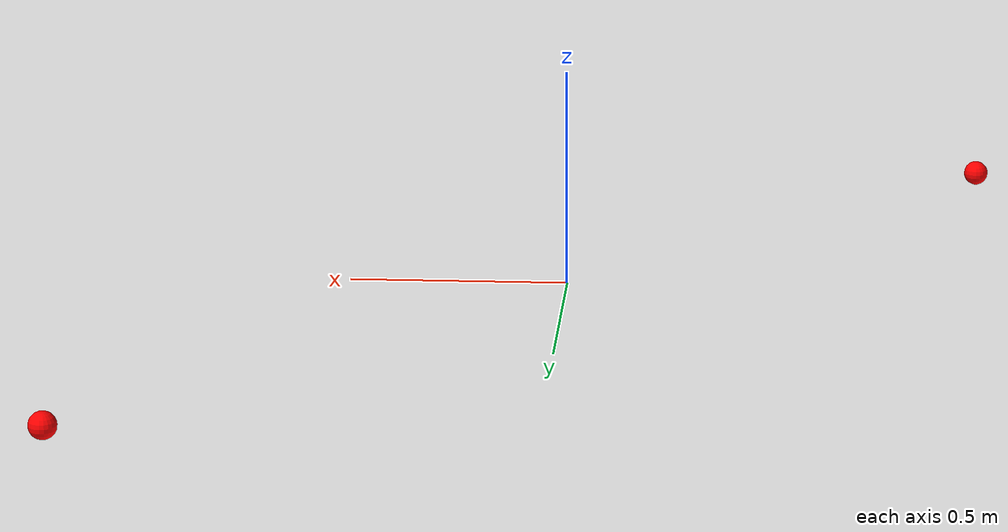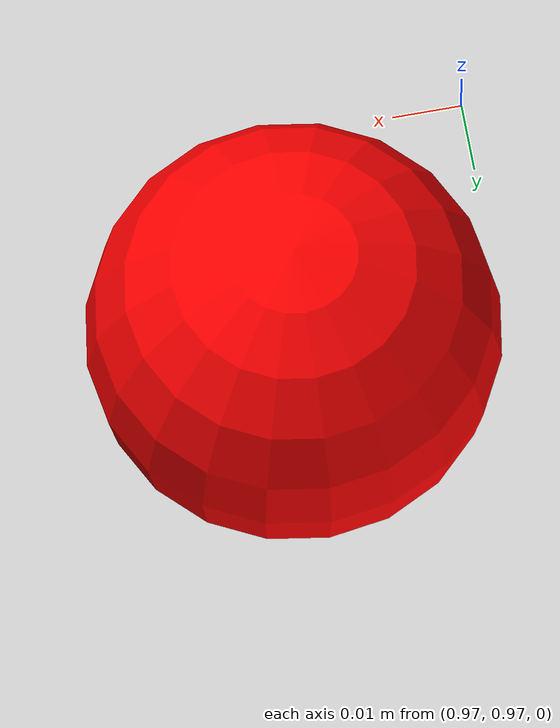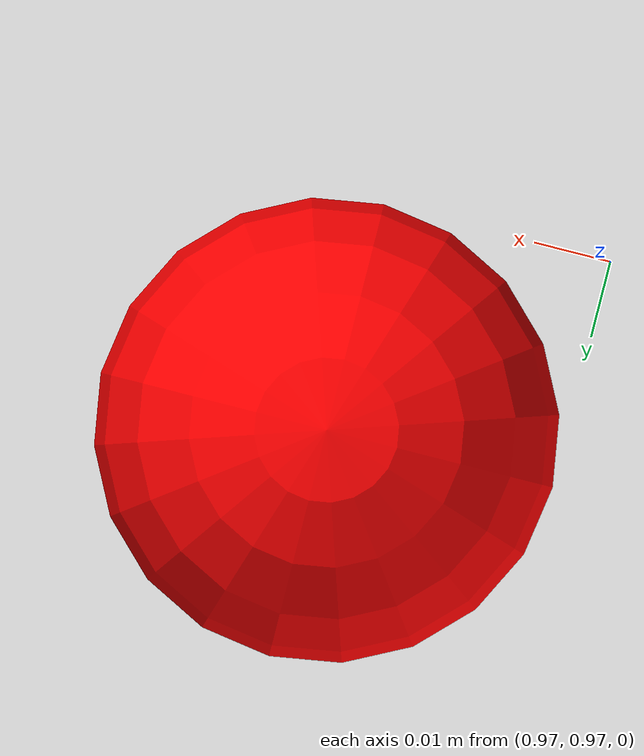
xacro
<?xml version="1.0"?>
<robot xmlns:xacro="http://www.ros.org/wiki/xacro" name="ground_hooks">

  <xacro:macro name="hook" params="prefix x y z">
    <link name="${prefix}">
      <inertial>
        <mass value="0.001"/>
        <inertia ixx="1e-6" ixy="0" ixz="0" iyy="1e-6" iyz="0" izz="1e-6"/>
      </inertial>
      <visual>
        <geometry>
          <sphere radius="0.03"/>
        </geometry>
        <material name="Red">
            <color rgba="1.0 0.0 0.0 1.0"/>
        </material>
      </visual>
    </link>

    <joint name="base_link_to_${prefix}" type="fixed">
      <parent link="world"/>   <!-- was: world -->
      <child link="${prefix}"/>
      <origin xyz="${x} ${y} ${z}" rpy="0 0 0"/>
    </joint>

    <ros2_control name="ControlSystem_${prefix}" type="system">
      <hardware><plugin>gz_ros2_control/GazeboSimSystem</plugin></hardware>
      <joint name="joint_${prefix}_x">
        <command_interface name="position"/>
        <state_interface name="position"/>
        <state_interface name="velocity"/>
        <state_interface name="effort"/>
      </joint>
      <joint name="joint_${prefix}_y">
        <command_interface name="position"/>
        <state_interface name="position"/>
        <state_interface name="velocity"/>
        <state_interface name="effort"/>
      </joint>
      <joint name="joint_${prefix}_z">
        <command_interface name="position"/>
        <state_interface name="position"/>
        <state_interface name="velocity"/>
        <state_interface name="effort"/>
      </joint>
    </ros2_control>
  </xacro:macro>

  <link name="world"/>

  <xacro:hook prefix="hook1" x="1.0" y="1.0" z="0.0"/>
  <xacro:hook prefix="hook2" x="-1.0" y="-1.0" z="0.0"/>

</robot>
